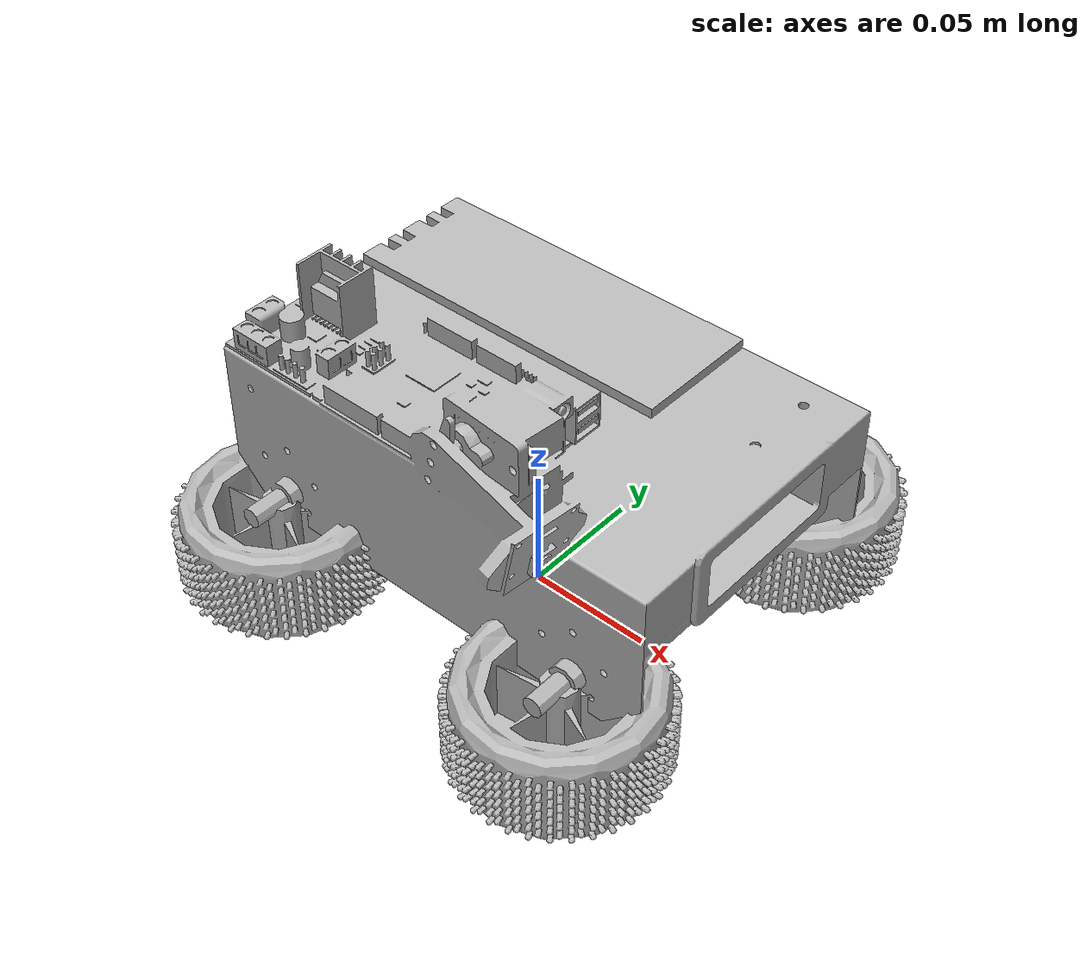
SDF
<sdf version='1.7'>
  <model name='sam_bot'>
    <joint name='fixed' type='fixed'>
      <pose relative_to='__model__'>0 0 0 0 -0 0</pose>
      <parent>world</parent>
      <child>base_link</child>
    </joint>
    <link name='base_link'>
      <pose relative_to='fixed'>0 0 0 0 -0 0</pose>
      <inertial>
        <pose>0 0 0 0 -0 0</pose>
        <mass>100</mass>
        <inertia>
          <ixx>1</ixx>
          <ixy>0</ixy>
          <ixz>0</ixz>
          <iyy>1</iyy>
          <iyz>0</iyz>
          <izz>1</izz>
        </inertia>
      </inertial>
      <collision name='base_link_collision'>
        <pose>0 0 0 0 -0 0</pose>
        <geometry>
          <mesh>
            <scale>1 1 1</scale>
            <uri>model://axioma_urdf/meshes/collision/chasis.dae</uri>
          </mesh>
        </geometry>
      </collision>
      <visual name='base_link_visual'>
        <pose>0 0 0 0 -0 0</pose>
        <geometry>
          <mesh>
            <scale>1 1 1</scale>
            <uri>model://axioma_urdf/meshes/visual/chasis.stl</uri>
          </mesh>
        </geometry>
      </visual>
    </link>
    <joint name='base_to_wheel1' type='revolute'>
      <pose relative_to='base_link'>0.06442 0.07385 0.04068 0 -0 0</pose>
      <parent>base_link</parent>
      <child>wheel_1</child>
      <axis>
        <xyz>0 1 0</xyz>
        <limit>
          <lower>-1e+16</lower>
          <upper>1e+16</upper>
        </limit>
        <dynamics>
          <spring_reference>0</spring_reference>
          <spring_stiffness>0</spring_stiffness>
        </dynamics>
      </axis>
    </joint>
    <link name='wheel_1'>
      <pose relative_to='base_to_wheel1'>0 0 0 0 -0 0</pose>
      <inertial>
        <pose>0 0 0 0 -0 0</pose>
        <mass>10</mass>
        <inertia>
          <ixx>1</ixx>
          <ixy>0</ixy>
          <ixz>0</ixz>
          <iyy>1</iyy>
          <iyz>0</iyz>
          <izz>1</izz>
        </inertia>
      </inertial>
      <collision name='wheel_1_collision'>
        <pose>0 0 0 0 -0 0</pose>
        <geometry>
          <mesh>
            <scale>1 1 1</scale>
            <uri>model://axioma_urdf/meshes/collision/llanta.dae</uri>
          </mesh>
        </geometry>
      </collision>
      <visual name='wheel_1_visual'>
        <pose>0 0 0 0 -0 0</pose>
        <geometry>
          <mesh>
            <scale>1 1 1</scale>
            <uri>model://axioma_urdf/meshes/visual/llanta.stl</uri>
          </mesh>
        </geometry>
      </visual>
    </link>
    <joint name='base_to_wheel2' type='revolute'>
      <pose relative_to='base_link'>-0.071224 0.07385 0.04068 0 -0 0</pose>
      <parent>base_link</parent>
      <child>wheel_2</child>
      <axis>
        <xyz>0 1 0</xyz>
        <limit>
          <lower>-1e+16</lower>
          <upper>1e+16</upper>
        </limit>
        <dynamics>
          <spring_reference>0</spring_reference>
          <spring_stiffness>0</spring_stiffness>
        </dynamics>
      </axis>
    </joint>
    <link name='wheel_2'>
      <pose relative_to='base_to_wheel2'>0 0 0 0 -0 0</pose>
      <inertial>
        <pose>0 0 0 0 -0 0</pose>
        <mass>10</mass>
        <inertia>
          <ixx>1</ixx>
          <ixy>0</ixy>
          <ixz>0</ixz>
          <iyy>1</iyy>
          <iyz>0</iyz>
          <izz>1</izz>
        </inertia>
      </inertial>
      <collision name='wheel_2_collision'>
        <pose>0 0 0 0 -0 0</pose>
        <geometry>
          <mesh>
            <scale>1 1 1</scale>
            <uri>model://axioma_urdf/meshes/collision/llanta.dae</uri>
          </mesh>
        </geometry>
      </collision>
      <visual name='wheel_2_visual'>
        <pose>0 0 0 0 -0 0</pose>
        <geometry>
          <mesh>
            <scale>1 1 1</scale>
            <uri>model://axioma_urdf/meshes/visual/llanta.stl</uri>
          </mesh>
        </geometry>
      </visual>
    </link>
    <joint name='base_to_wheel3' type='revolute'>
      <pose relative_to='base_link'>-0.071224 -0.0625 0.04068 0 0 -3.14159</pose>
      <parent>base_link</parent>
      <child>wheel_3</child>
      <axis>
        <xyz>0 1 0</xyz>
        <limit>
          <lower>-1e+16</lower>
          <upper>1e+16</upper>
        </limit>
        <dynamics>
          <spring_reference>0</spring_reference>
          <spring_stiffness>0</spring_stiffness>
        </dynamics>
      </axis>
    </joint>
    <link name='wheel_3'>
      <pose relative_to='base_to_wheel3'>0 0 0 0 -0 0</pose>
      <inertial>
        <pose>0 0 0 0 -0 0</pose>
        <mass>10</mass>
        <inertia>
          <ixx>1</ixx>
          <ixy>0</ixy>
          <ixz>0</ixz>
          <iyy>1</iyy>
          <iyz>0</iyz>
          <izz>1</izz>
        </inertia>
      </inertial>
      <collision name='wheel_3_collision'>
        <pose>0 0 0 0 -0 0</pose>
        <geometry>
          <mesh>
            <scale>1 1 1</scale>
            <uri>model://axioma_urdf/meshes/collision/llanta.dae</uri>
          </mesh>
        </geometry>
      </collision>
      <visual name='wheel_3_visual'>
        <pose>0 0 0 0 -0 0</pose>
        <geometry>
          <mesh>
            <scale>1 1 1</scale>
            <uri>model://axioma_urdf/meshes/visual/llanta.stl</uri>
          </mesh>
        </geometry>
      </visual>
    </link>
    <joint name='base_to_wheel4' type='revolute'>
      <pose relative_to='base_link'>0.064423 -0.0625 0.04068 0 0 -3.14159</pose>
      <parent>base_link</parent>
      <child>wheel_4</child>
      <axis>
        <xyz>0 1 0</xyz>
        <limit>
          <lower>-1e+16</lower>
          <upper>1e+16</upper>
        </limit>
        <dynamics>
          <spring_reference>0</spring_reference>
          <spring_stiffness>0</spring_stiffness>
        </dynamics>
      </axis>
    </joint>
    <link name='wheel_4'>
      <pose relative_to='base_to_wheel4'>0 0 0 0 -0 0</pose>
      <inertial>
        <pose>0 0 0 0 -0 0</pose>
        <mass>10</mass>
        <inertia>
          <ixx>1</ixx>
          <ixy>0</ixy>
          <ixz>0</ixz>
          <iyy>1</iyy>
          <iyz>0</iyz>
          <izz>1</izz>
        </inertia>
      </inertial>
      <collision name='wheel_4_collision'>
        <pose>0 0 0 0 -0 0</pose>
        <geometry>
          <mesh>
            <scale>1 1 1</scale>
            <uri>model://axioma_urdf/meshes/collision/llanta.dae</uri>
          </mesh>
        </geometry>
      </collision>
      <visual name='wheel_4_visual'>
        <pose>0 0 0 0 -0 0</pose>
        <geometry>
          <mesh>
            <scale>1 1 1</scale>
            <uri>model://axioma_urdf/meshes/visual/llanta.stl</uri>
          </mesh>
        </geometry>
      </visual>
    </link>
  </model>
</sdf>
